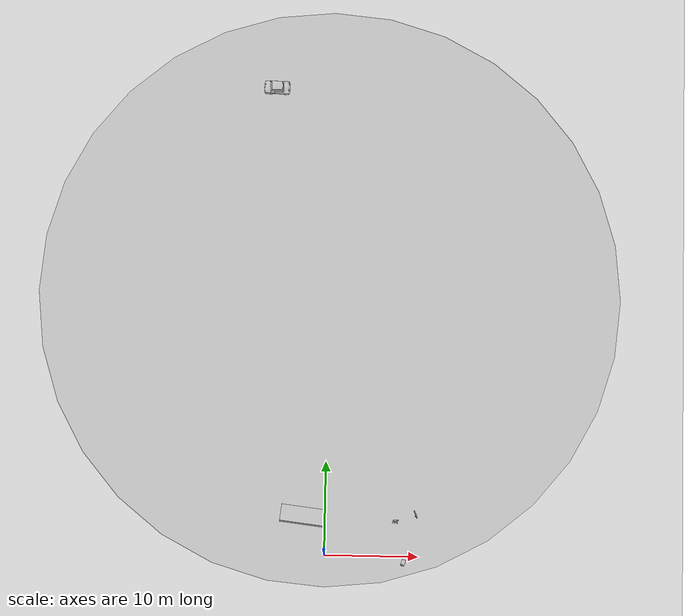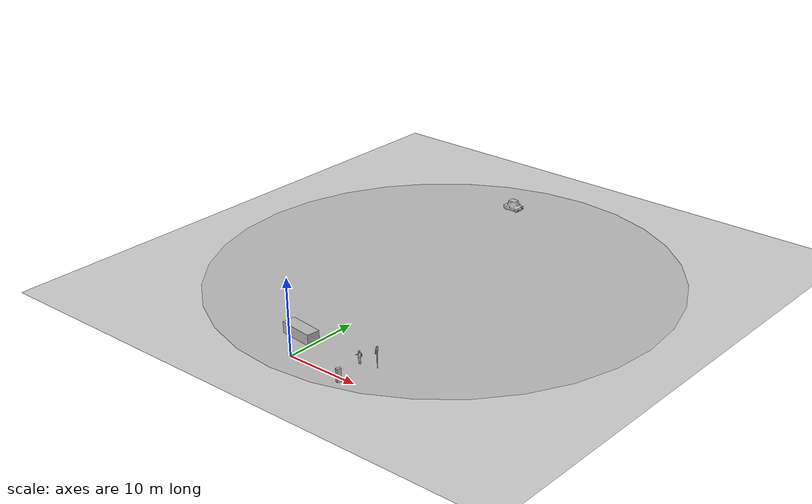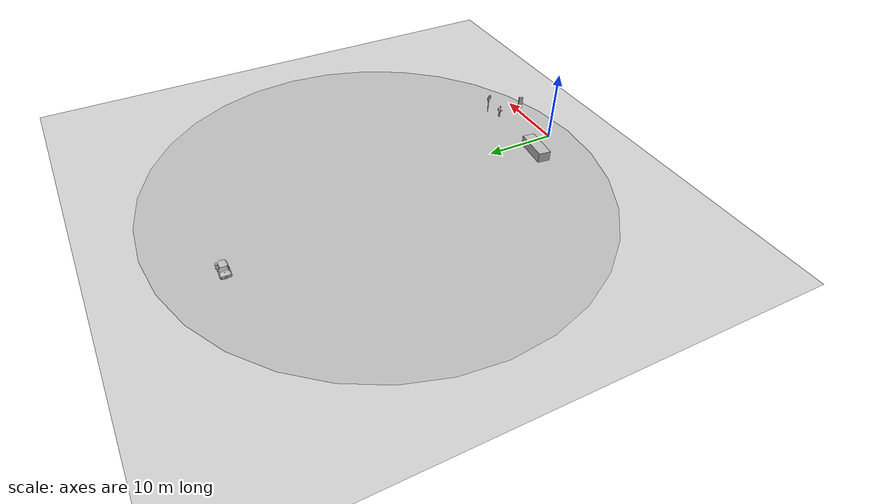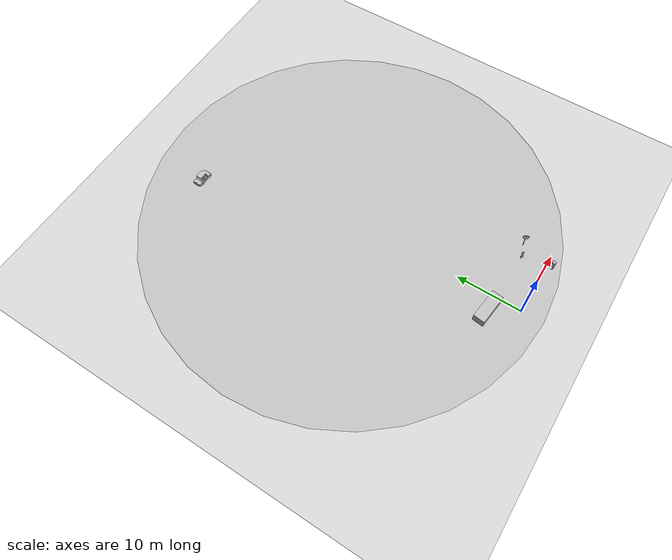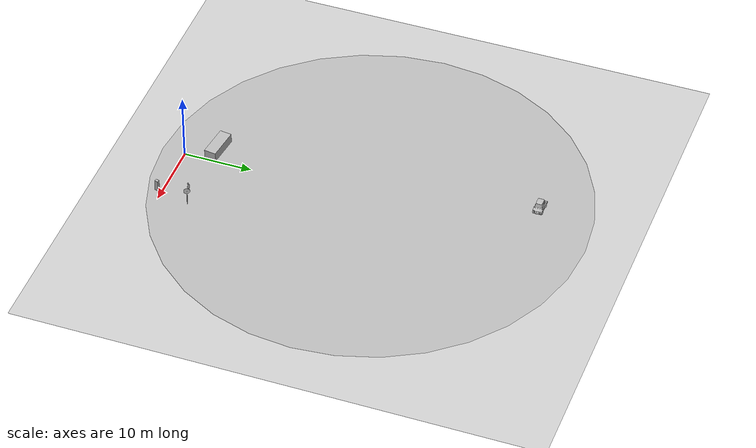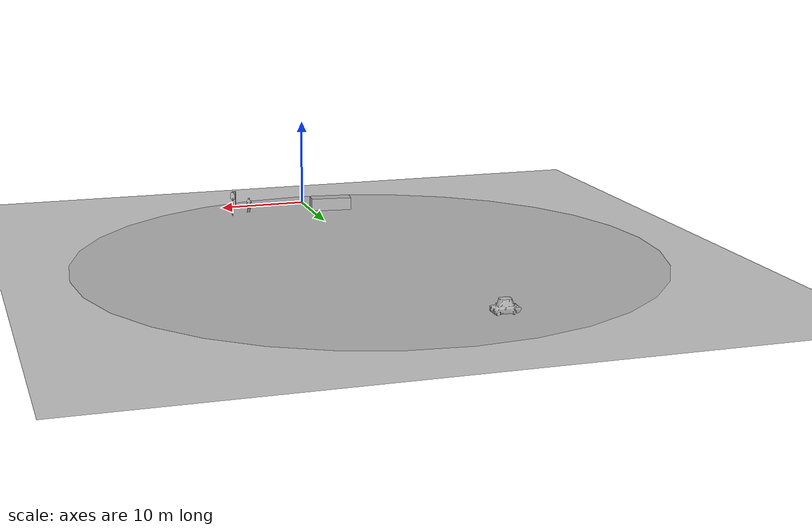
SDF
<?xml version="1.0" ?>
<sdf version="1.4">
  <world name="default">
    <gui fullscreen='0'>
      <camera name='user_camera'>
        <pose frame=''>-0.23904 -19.0487 0.901345 -0 0.071456 1.52819</pose>
        <view_controller>orbit</view_controller>
        <projection_type>perspective</projection_type>
      </camera>
    </gui>

    <physics type="ode">
      <gravity>0 0 -9.81</gravity>
      <ode>
        <solver>
          <type>world</type>
          <iters>500</iters>
          <sor>1.0</sor>
        </solver>
        <constraints>
          <cfm>0.0</cfm>
          <erp>0.2</erp>
          <contact_max_correcting_vel>0.1</contact_max_correcting_vel>
          <contact_surface_layer>0.0</contact_surface_layer>
        </constraints>
      </ode>
      <real_time_update_rate>1000</real_time_update_rate>
      <max_step_size>0.001</max_step_size>
    </physics>

    <include>
      <uri>model://loop_freeway</uri>
      <name>loop_freeway</name>
      <pose>0 27.928473 0.01 0 0 0</pose>
    </include>

    <include>
      <uri>model://ground_plane</uri>
      <pose>0 0 0 0 0 0</pose>
    </include>

    <include>
      <uri>model://speed_limit_80</uri>
      <name>speed_limit_80_1</name>
      <pose>9.634830 4.317166 -0.154945 0 0 0.397512</pose>
    </include>

    <include>
      <uri>model://traffic_light</uri>
      <name>traffic_light1</name>
      <pose>2.325000 53.401695 -1.0 0 0 1.578703</pose>
    </include>

    <include>
      <uri>model://traffic_light</uri>
      <name>traffic_light2</name>
      <pose>-25.008516 26.916649 -1.0 0 0 -2.940904</pose>
    </include>

    <include>
      <uri>model://traffic_light</uri>
      <name>traffic_light3</name>
      <pose>2.703650 2.435987 -1.0 0 0 -1.545811</pose>
    </include>

    <include>
      <uri>model://traffic_light</uri>
      <name>traffic_light4</name>
      <pose>25.657097 25.981258 -1.0 0 0 -0.044404</pose>
    </include>

    <include>
      <uri>model://car_passat</uri>
      <name>car_passat1</name>
      <pose>-1.668908 3.828455 0.320109 0 0 -1.690554</pose>
    </include>

  <include>
      <uri>model://old_car</uri>
      <name>old_car1</name>
      <pose>-6.198360 50.704773 -0.011254 0 0 3.125236</pose>
    </include>

    <include>
      <uri>model://person_ken</uri>
      <name>person_ken</name>
      <pose>7.524980 3.617249 0.148014 0 0 0</pose>
    </include>

    <include>
      <uri>model://person_ryan</uri>
      <name>person_ryan</name>
      <pose>8.372791 -0.742244 0.046237 0 0 -1.894694</pose>
    </include>

    <!-- A global light source -->
    <include>
      <uri>model://sun</uri>
    </include>

    <!-- PLUGINS -->
    <plugin name="traffic_light_manager_world_plugin" filename="libtraffic_light_manager_world_plugin.so">
      <update_frequency>1.0</update_frequency>
      <model_traffic_lights>traffic_light1</model_traffic_lights>
    </plugin>

  </world>
</sdf>

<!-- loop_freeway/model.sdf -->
<sdf version='1.6'>
  <model name='loop_freeway'>
    <link name='link_1'>
         <visual name='visual'>
        <pose frame=''>0 0 0 0 -0 0</pose>
        <geometry>
          <mesh>
            <uri>model://loop_freeway/meshes/loop_hq.dae</uri>
            <scale>1.0 1.0 1.0</scale>
          </mesh>
        </geometry>
        <cast_shadows>0</cast_shadows>
        <transparency>0</transparency>
      </visual>
    </link>

    <static>1</static>
    <allow_auto_disable>1</allow_auto_disable>
  </model>
</sdf>

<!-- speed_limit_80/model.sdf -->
<sdf version='1.6'>
  <model name='speed_limit_80'>
    <link name='link_1'>
         <visual name='visual'>
        <pose frame=''>0 0 0 0 -0 0</pose>
        <geometry>
          <mesh>
            <uri>model://speed_limit_80/meshes/speed_limit_80.dae</uri>
            <scale>2.0 2.0 2.0</scale>
          </mesh>
        </geometry>
        <cast_shadows>0</cast_shadows>
        <transparency>0</transparency>
      </visual>
      <collision name='collision'>
        <laser_retro>0</laser_retro>
        <max_contacts>10</max_contacts>
        <pose frame=''>0 0 0 0 -0 0</pose>
        <geometry>
          <mesh>
            <uri>model://speed_limit_80/meshes/speed_limit_80.dae</uri>
            <scale>2.0 2.0 2.0</scale>
          </mesh>
        </geometry>
     </collision>
    </link>

    <static>1</static>
    <allow_auto_disable>1</allow_auto_disable>
  </model>

</sdf>

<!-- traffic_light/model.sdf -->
<sdf version='1.6'>
  <model name='traffic_light'>
    <link name='traffic_light'>
      <pose>0 0 0 0 0 0</pose>
      <collision name='collision'>
        <geometry>
          <box>
            <size>0.12 0.025 0.25</size>
          </box>
        </geometry>
      </collision>
      <visual name='visual'>
        <geometry>
          <box>
            <size>0.12 0.025 0.25</size>
          </box>
        </geometry>
        <material>
          <script>
            <uri>model://turtlebot3_autorace_2020/traffic_light/materials/scripts</uri>
            <uri>model://turtlebot3_autorace_2020/traffic_light/materials/textures</uri>
            <name>traffic_light_red</name>
          </script>
        </material>
      </visual>
    </link>
    <plugin name="traffic_light_plugin" filename="libtraffic_light_plugin.so">
    </plugin>
    <static>1</static>
  </model>
</sdf>

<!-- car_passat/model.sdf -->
<sdf version='1.6'>
  <model name='car_passat'>
    <link name='link_1'>
      <visual name='visual'>
        <pose frame=''>0 0 0 0 -0 0</pose>
        <geometry>
          <mesh>
            <uri>model://car_passat/meshes/car_passat.dae</uri>
            <scale>1.0 1.0 1.0</scale>
          </mesh>
        </geometry>
        <cast_shadows>0</cast_shadows>
        <transparency>0</transparency>
      </visual>
      <collision name='collision'>
        <laser_retro>0</laser_retro>
        <max_contacts>10</max_contacts>
        <pose frame=''>0 0 0 0 -0 0</pose>
        <geometry>
          <mesh>
            <uri>model://car_passat/meshes/car_passat.stl</uri>
            <scale>1.0 1.0 1.0</scale>
          </mesh>
        </geometry>
     </collision>
    </link>

    <static>1</static>
    <allow_auto_disable>1</allow_auto_disable>
  </model>
</sdf>

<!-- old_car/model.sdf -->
<sdf version='1.6'>
  <model name='old_car'>
    <link name='link_1'>
      <visual name='visual'>
        <pose frame=''>0 0 0 0 -0 0</pose>
        <geometry>
          <mesh>
            <uri>model://old_car/meshes/old_car.dae</uri>
            <scale>1.0 1.0 1.0</scale>
          </mesh>
        </geometry>
        <cast_shadows>0</cast_shadows>
        <transparency>0</transparency>
      </visual>
      <collision name='collision'>
        <laser_retro>0</laser_retro>
        <max_contacts>10</max_contacts>
        <pose frame=''>0 0 0 0 -0 0</pose>
        <geometry>
          <mesh>
            <uri>model://old_car/meshes/old_car.stl</uri>
            <scale>1.0 1.0 1.0</scale>
          </mesh>
        </geometry>
     </collision>
    </link>

    <static>1</static>
    <allow_auto_disable>1</allow_auto_disable>
  </model>
</sdf>

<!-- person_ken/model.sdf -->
<sdf version='1.6'>
  <model name='person_ken'>
    <link name='link_1'>

    <inertial>
        <mass>1.0</mass>
        <inertia> <!-- inertias are tricky to compute -->
          <!-- http://gazebosim.org/tutorials?tut=inertia&cat=build_robot -->
          <ixx>0.001666666666666667</ixx>       <!-- for a box: ixx = 0.083 * mass * (y*y + z*z) -->
          <ixy>0.0</ixy>         <!-- for a box: ixy = 0 -->
          <ixz>0.0</ixz>         <!-- for a box: ixz = 0 -->
          <iyy>0.001666666666666667</iyy>       <!-- for a box: iyy = 0.083 * mass * (x*x + z*z) -->
          <iyz>0.0</iyz>         <!-- for a box: iyz = 0 -->
          <izz>0.001666666666666667</izz>       <!-- for a box: izz = 0.083 * mass * (x*x + y*y) -->
        </inertia>
      </inertial>
         <visual name='visual'>
        <pose frame=''>0 0 0 0 -0 0</pose>
        <geometry>
          <mesh>
            <uri>model://person_ken/meshes/person_ken.dae</uri>
            <scale>1.0 1.0 1.0</scale>
          </mesh>
        </geometry>
        <cast_shadows>0</cast_shadows>
        <transparency>0</transparency>
      </visual>
      <collision name='collision'>
        <laser_retro>0</laser_retro>
        <max_contacts>10</max_contacts>
        <pose frame=''>0 0 0 0 -0 0</pose>
        <geometry>
          <mesh>
            <uri>model://person_ken/meshes/person_ken.stl</uri>
            <scale>1.0 1.0 1.0</scale>
          </mesh>
        </geometry>
     </collision>
    </link>

    <static>1</static>
    <allow_auto_disable>1</allow_auto_disable>
  </model>
</sdf>

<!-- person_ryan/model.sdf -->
<sdf version='1.6'>
  <model name='person_ryan'>
    <link name='link_1'>

    <inertial>
        <mass>1.0</mass>
        <inertia> <!-- inertias are tricky to compute -->
          <!-- http://gazebosim.org/tutorials?tut=inertia&cat=build_robot -->
          <ixx>0.001666666666666667</ixx>       <!-- for a box: ixx = 0.083 * mass * (y*y + z*z) -->
          <ixy>0.0</ixy>         <!-- for a box: ixy = 0 -->
          <ixz>0.0</ixz>         <!-- for a box: ixz = 0 -->
          <iyy>0.001666666666666667</iyy>       <!-- for a box: iyy = 0.083 * mass * (x*x + z*z) -->
          <iyz>0.0</iyz>         <!-- for a box: iyz = 0 -->
          <izz>0.001666666666666667</izz>       <!-- for a box: izz = 0.083 * mass * (x*x + y*y) -->
        </inertia>
      </inertial>
         <visual name='visual'>
        <pose frame=''>0 0 0 0 -0 0</pose>
        <geometry>
          <mesh>
            <uri>model://person_ryan/meshes/person_ryan.dae</uri>
            <scale>1.0 1.0 1.0</scale>
          </mesh>
        </geometry>
        <cast_shadows>0</cast_shadows>
        <transparency>0</transparency>
      </visual>
      <collision name='collision'>
        <laser_retro>0</laser_retro>
        <max_contacts>10</max_contacts>
        <pose frame=''>0 0 0 0 -0 0</pose>
        <geometry>
          <mesh>
            <uri>model://person_ryan/meshes/person_ryan.stl</uri>
            <scale>1.0 1.0 1.0</scale>
          </mesh>
        </geometry>
     </collision>
    </link>

    <static>1</static>
    <allow_auto_disable>1</allow_auto_disable>
  </model>
</sdf>
